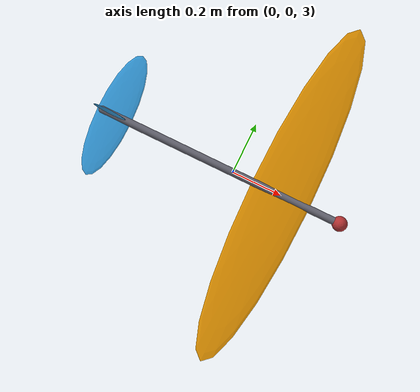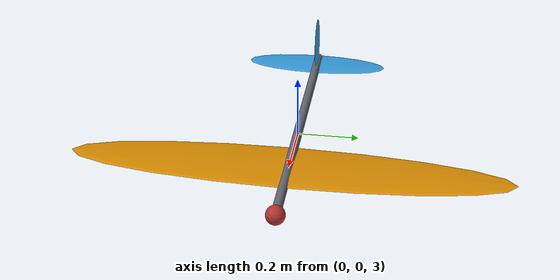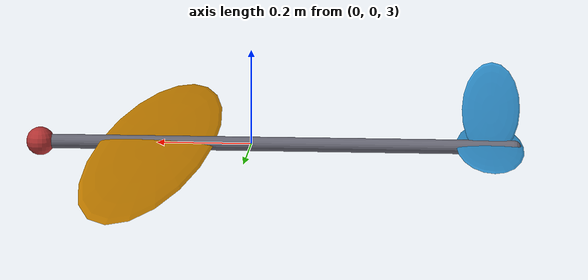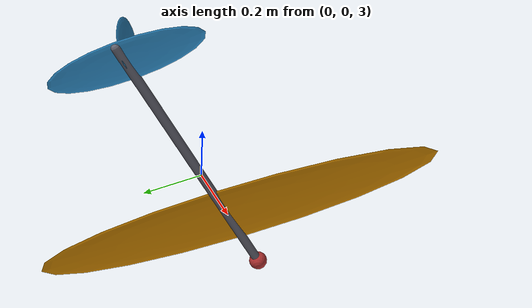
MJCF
<mujoco model="glider">
  <statistic extent="6" center="3 0 1.5"/>

  <visual>
    <global realtime="0.4" azimuth="120" elevation="-10"/>
    <rgba haze="0.15 0.25 0.35 1"/>
    <map zfar="80"/>
  </visual>

  <asset>
    <texture type="skybox" builtin="gradient" rgb1="0.3 0.5 0.7" rgb2="0 0 0" width="64" height="64"/>
    <texture name="grid" type="2d" builtin="checker" rgb1=".2 .3 .4" rgb2=".1 .15 .2"
             width="512" height="512" mark="cross" markrgb=".8 .8 .8"/>
    <material name="grid" texture="grid" texrepeat="8 8" reflectance="0.2"/>
  </asset>

  <!-- still air (no wind); the glider's own motion creates the airflow -->
  <option density="1.225" viscosity="1.8e-5" gravity="0 0 -9.81"
          integrator="implicitfast" timestep="0.002"/>

  <worldbody>
    <light pos="2 -2 6" dir="0 0.3 -1" diffuse="1 1 1"/>
    <geom name="ground" type="plane" pos="20 0 0" size="40 10 .1" material="grid" condim="3"/>

    <!-- nose points in +x (direction of flight) -->
    <body name="glider" pos="0 0 3">
      <freejoint/>
      <!-- fuselage rod -->
      <geom name="fuse" type="capsule" fromto="0.45 0 0  -0.55 0 0" size="0.015"
            mass="0.05" rgba=".4 .4 .45 1"/>
      <!-- nose ballast at the FRONT (+x): puts CG ahead of aero centre => stable -->
      <geom name="nose" type="sphere" pos="0.45 0 0" size="0.03" mass="0.30"
            rgba=".7 .2 .2 1"/>
      <!-- main wing, +2 deg incidence. fluidcoef tuned for higher L/D:
           low blunt/slender drag, boosted Kutta lift -->
      <geom name="wing" type="ellipsoid" pos="0.20 0 0" euler="0 -2 0"
            size="0.12 0.7 0.008" mass="0.10" fluidshape="ellipsoid"
            fluidcoef="0.05 0.02 1.5 2.5 1.0"
            rgba=".85 .55 0 1"/>
      <!-- horizontal tailplane, aft (-x) -->
      <geom name="tail" type="ellipsoid" pos="-0.50 0 0"
            size="0.07 0.25 0.006" mass="0.03" fluidshape="ellipsoid"
            rgba=".2 .6 .85 1"/>
      <!-- vertical fin for yaw stability -->
      <geom name="fin" type="ellipsoid" pos="-0.50 0 0.08" euler="90 0 0"
            size="0.06 0.10 0.005" mass="0.02" fluidshape="ellipsoid"
            rgba=".2 .6 .85 1"/>
    </body>
  </worldbody>

  <keyframe>
    <!-- launch: 14 m/s forward (+x), level, at 3 m altitude -->
    <key name="launch" qpos="0 0 3  1 0 0 0" qvel="14 0 0  0 0 0"/>
  </keyframe>
</mujoco>
